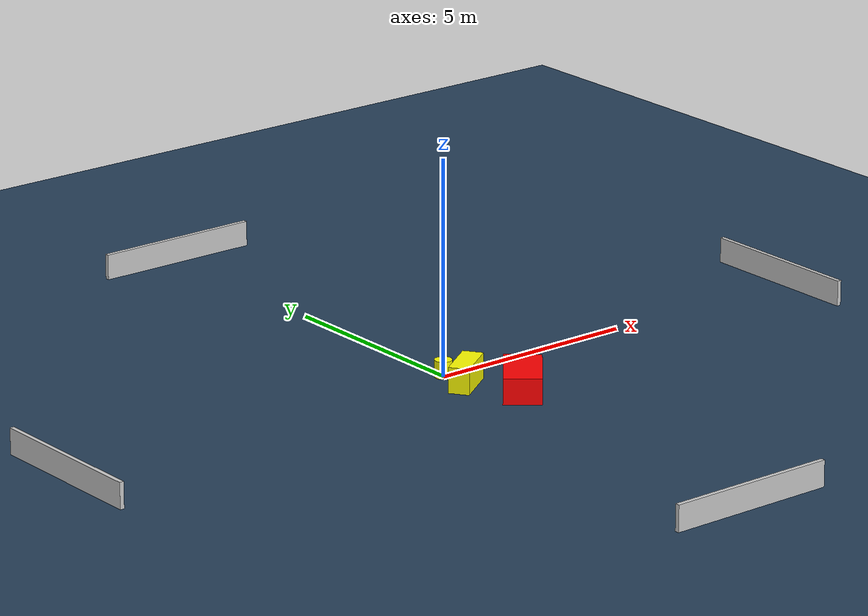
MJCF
<?xml version="1.0" ?>
<mujoco model="generated_environment">
  <option timestep="0.01" integrator="RK4" cone="elliptic"/>
  <default>
    <geom density="1"/>
  </default>
  <asset>
    <texture builtin="gradient" height="3072" name="skybox" rgb1="0.3 0.5 0.7" rgb2="0 0 0" type="skybox" width="512"/>
    <texture builtin="checker" height="300" name="groundplane" rgb1="0.2 0.3 0.4" rgb2="0.1 0.2 0.3" type="2d" width="300"/>
    <material name="groundplane" reflectance="0.2" texrepeat="5 5" texture="groundplane"/>
  </asset>
  <worldbody>
    <light dir="0 0 -1" directional="true" pos="0 0 1.5"/>
    <geom condim="3" friction="0.5 0.005 0.001" material="groundplane" name="floor" pos="0 0 0" size="0 0 0.05" type="plane"/>
    <body name="walls">
      <geom name="wall_1" condim="4" pos="-10.0 0.0 0.3" rgba="0.800000011920929 0.800000011920929 0.800000011920929 1.0" size="0.05 2.0 0.3" type="box"/>
      <geom name="wall_2" condim="4" pos="10.0 0.0 0.3" rgba="0.800000011920929 0.800000011920929 0.800000011920929 1.0" size="0.05 2.0 0.3" type="box"/>
      <geom name="wall_3" condim="4" pos="0.0 -10.0 0.3" rgba="0.800000011920929 0.800000011920929 0.800000011920929 1.0" size="2.0 0.05 0.3" type="box"/>
      <geom name="wall_4" condim="4" pos="0.0 10.0 0.3" rgba="0.800000011920929 0.800000011920929 0.800000011920929 1.0" size="2.0 0.05 0.3" type="box"/>
    </body>
    <body name="robot">
      <joint name="joint_x" type="slide" pos="0 0 0" axis="1 0 0"/>
      <joint name="joint_y" type="slide" pos="0 0 0" axis="0 1 0"/>
      <geom name="robot" type="cylinder" pos="0.0 0.0 0.2" size="0.2 0.2 0.0" mass="5.0" friction="1.0 0.005 0.0001" condim="4" rgba="1.0 1.0 0.0 1.0"/>
    </body>
    <body name="obstacle_1_movable">
      <geom name="obstacle_1_movable" condim="4" pos="0.02203767681840868 -0.7615214281591836 0.3" euler="0 0 304.6412574364265" friction="0.0 0.005 0.001" rgba="1.0 1.0 0.0 1.0" size="0.23717535910192575 0.5596319676898913 0.3" type="box" mass="0.1"/>
      <joint type="free"/>
    </body>
    <body name="obstacle_2_static">
      <geom name="obstacle_2_static" condim="4" pos="0.7218684605695862 -1.8516273948189543 0.3" euler="0 0 320.3463785459511" friction="0.0 0.005 0.001" rgba="1.0 0.0 0.0 1.0" size="0.4285994509876843 0.7804375680398246 0.3" type="box"/>
    </body>
  </worldbody>
  <actuator>
    <motor name="actuator_x" joint="joint_x" gear="1" ctrlrange="-1 1"/>
    <motor name="actuator_y" joint="joint_y" gear="1" ctrlrange="-1 1"/>
  </actuator>
</mujoco>
